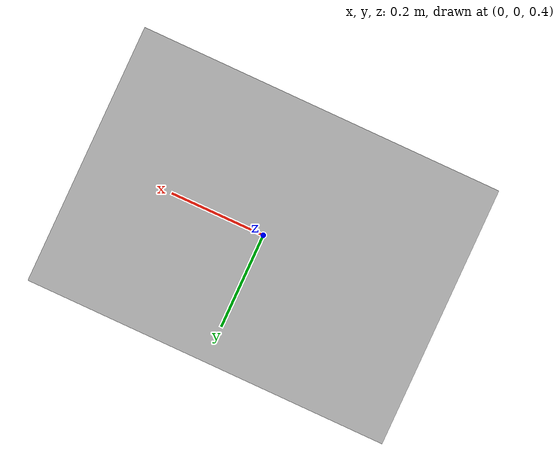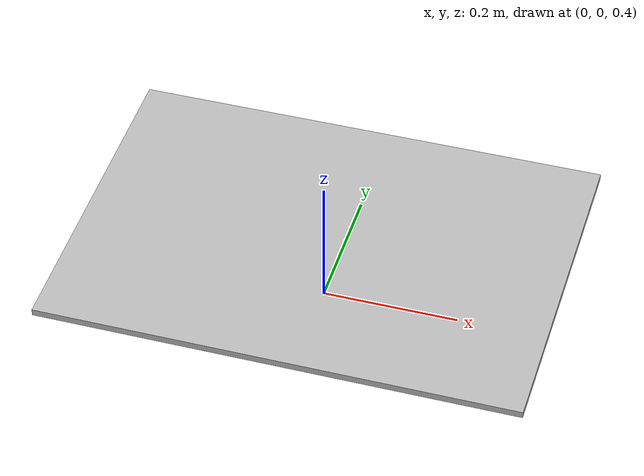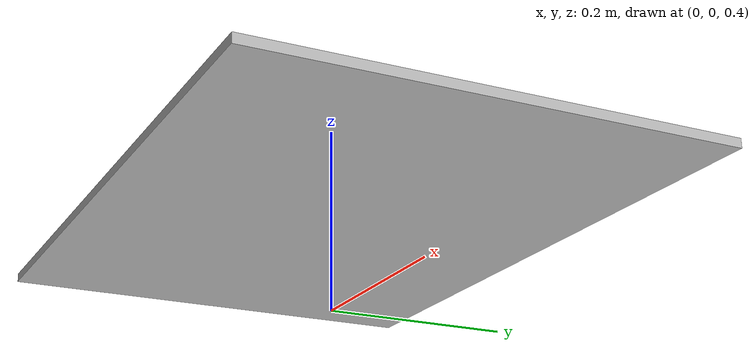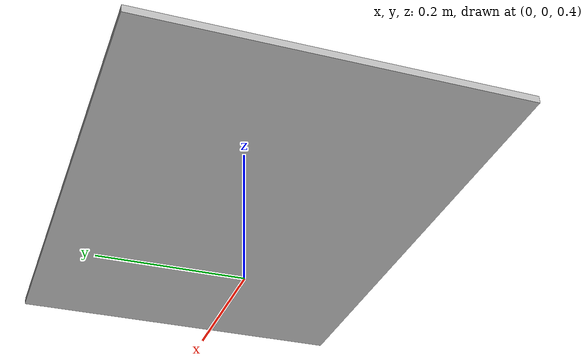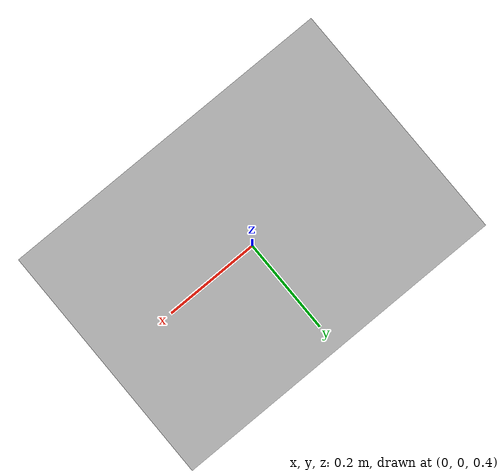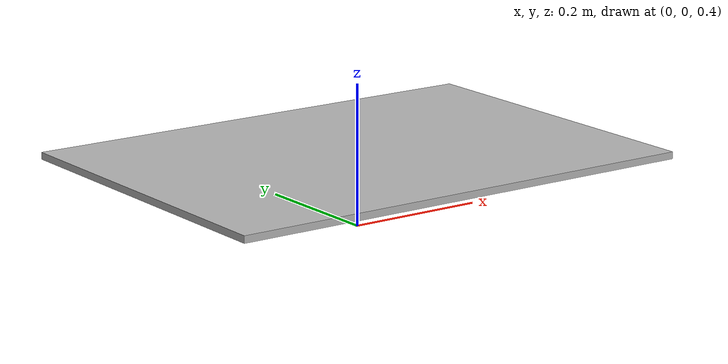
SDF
<?xml version="1.0" ?>
<sdf version="1.6">
  <model name="rectangular_table">
    <link name="table_top">
      <pose>0 0 0.5 0 0 0</pose>
      <inertial>
        <mass>10.0</mass>
        <inertia>
          <ixx>0.1667</ixx>
          <ixy>0.0</ixy>
          <ixz>0.0</ixz>
          <iyy>0.0833</iyy>
          <iyz>0.0</iyz>
          <izz>0.0833</izz>
        </inertia>
      </inertial>
      <collision name="collision">
        <geometry>
          <box>
            <size>0.7 0.5 0.01</size>
          </box>
        </geometry>
      </collision>
      <visual name="visual">
        <geometry>
          <box>
            <size>0.7 0.5 0.01</size>
          </box>
        </geometry>
      </visual>
    </link>
  </model>
</sdf>
